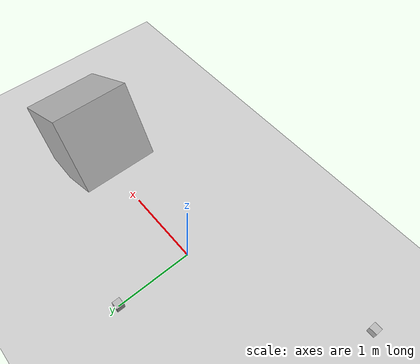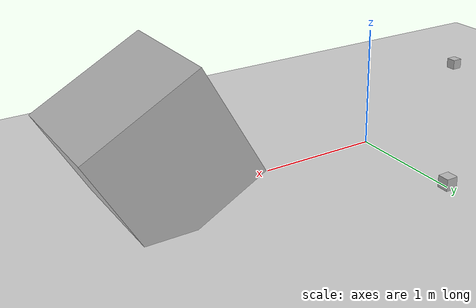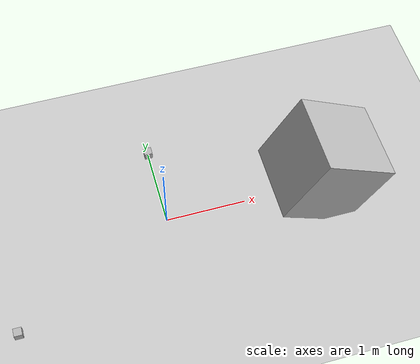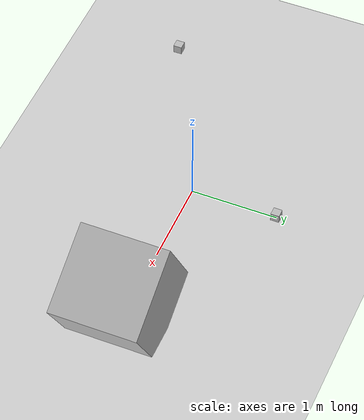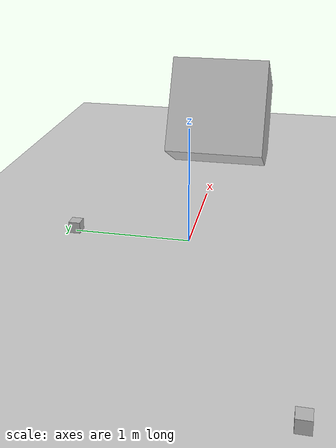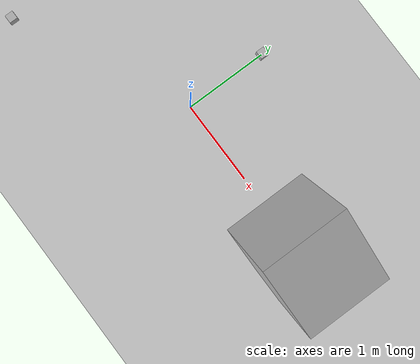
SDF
<!-- /* Copyright 2019 The MathWorks, Inc. -->
<?xml version="1.0"?>
<sdf version="1.4">
  <world name="default">
    <include>
      <uri>model://ground_plane</uri>
    </include>

    <include>
      <uri>model://sun</uri>
    </include>

   <model name ='unit_box'>
    <pose>2 0 .5 0 0.5 0</pose>
    <link name ='link'>
      <pose>0 0 0 0 0 0</pose>
      <collision name ='collision'>
        <geometry>
          <box><size>1 1 1</size></box>
        </geometry>
      </collision>
      <visual name ='visual'>
        <geometry>
          <box><size>1 1 1</size></box>
        </geometry>
      </visual>
    </link>
   </model>

   <model name="camera0">
    <pose>0 1 0.05 0 0 0</pose>
    <link name="link">
      <inertial>
        <mass>0.1</mass>
        <inertia>
          <ixx>0.000166667</ixx>
          <iyy>0.000166667</iyy>
          <izz>0.000166667</izz>
        </inertia>
      </inertial>
      <collision name="collision">
        <geometry>
          <box>
            <size>0.1 0.1 0.1</size>
          </box>
        </geometry>
      </collision>
      <visual name="visual">
        <geometry>
          <box>
            <size>0.1 0.1 0.1</size>
          </box>
        </geometry>
      </visual>
      <sensor name="camera" type="camera">
        <camera>
          <horizontal_fov>1.047</horizontal_fov>
          <image>
            <width>320</width>
            <height>240</height>
          </image>
          <clip>
            <near>0.1</near>
            <far>100</far>
          </clip>
        </camera>
        <always_on>1</always_on>
        <update_rate>200</update_rate>
        <visualize>true</visualize>
      </sensor>
    </link>
  </model>

  <model name="imu0">
    <link name="link">
     <pose>-2 -1 0.05 0 0 0</pose>
      <inertial>
        <mass>0.1</mass>
      </inertial>
      <visual name="visual">
        <geometry>
          <box>
            <size>0.1 0.1 0.1</size>
          </box>
        </geometry>
      </visual>
      <collision name="collision">
        <geometry>
          <box>
            <size>0.1 0.1 0.1</size>
          </box>
        </geometry>
      </collision>
      <sensor name="imu" type="imu">
        <imu>
          <angular_velocity>
            <x>
              <noise type="gaussian">
                <mean>0.0</mean>
                <stddev>2e-4</stddev>
                <bias_mean>0.0000075</bias_mean>
                <bias_stddev>0.0000008</bias_stddev>
              </noise>
            </x>
            <y>
              <noise type="gaussian">
                <mean>0.0</mean>
                <stddev>2e-4</stddev>
                <bias_mean>0.0000075</bias_mean>
                <bias_stddev>0.0000008</bias_stddev>
              </noise>
            </y>
            <z>
              <noise type="gaussian">
                <mean>0.0</mean>
                <stddev>2e-4</stddev>
                <bias_mean>0.0000075</bias_mean>
                <bias_stddev>0.0000008</bias_stddev>
              </noise>
            </z>
          </angular_velocity>
          <linear_acceleration>
            <x>
              <noise type="gaussian">
                <mean>0.0</mean>
                <stddev>1.7e-2</stddev>
                <bias_mean>0.1</bias_mean>
                <bias_stddev>0.001</bias_stddev>
              </noise>
            </x>
            <y>
              <noise type="gaussian">
                <mean>0.0</mean>
                <stddev>1.7e-2</stddev>
                <bias_mean>0.1</bias_mean>
                <bias_stddev>0.001</bias_stddev>
              </noise>
            </y>
            <z>
              <noise type="gaussian">
                <mean>0.0</mean>
                <stddev>1.7e-2</stddev>
                <bias_mean>0.1</bias_mean>
                <bias_stddev>0.001</bias_stddev>
              </noise>
            </z>
          </linear_acceleration>
        </imu>
        <always_on>1</always_on>
        <update_rate>200</update_rate>
      </sensor>
    </link>
  </model>

  <plugin name="GazeboTestPlugin" filename="lib/libGazeboTestPlugin.so"><portNumber>14581</portNumber></plugin>
  <plugin name="CustomHandlerTestPlugin" filename="lib/libCustomHandlerTestPlugin.so"></plugin>
  </world>
</sdf>
